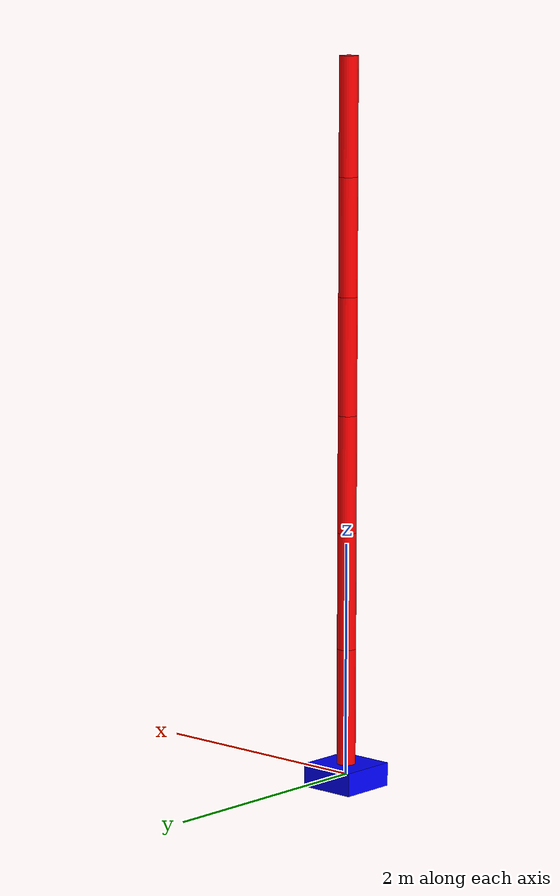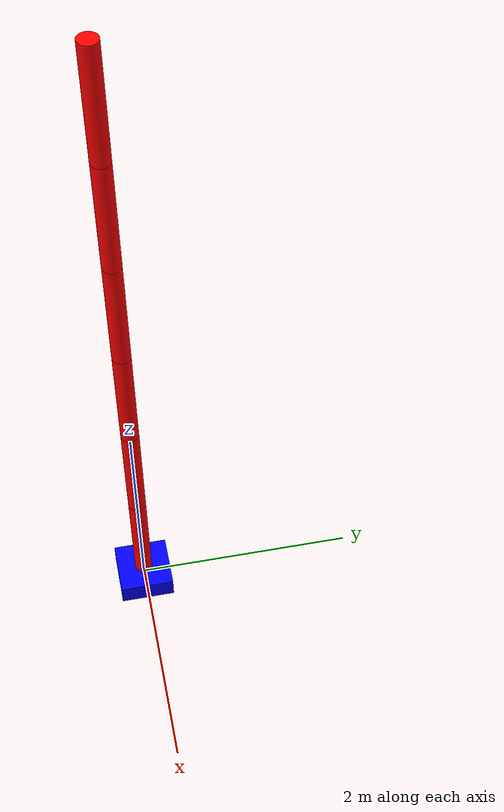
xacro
<?xml version="1.0"?>
<robot name="my_robot" xmlns:xacro="http://www.ros.org/wiki/xacro">
    <xacro:property name="base_size" value="0.5"/>
    <xacro:property name="base_height" value="0.2"/>
    <xacro:property name="arm_length" value="1.0"/>
    <xacro:property name="arm_radius" value="0.08"/>

<xacro:macro name="box_link" params="link_name size height">
    <link name="${link_name}">
        <visual>
            <geometry>
                <box size="${size} ${size} ${height}"/>
            </geometry>
            <material name="blue">
                <color rgba="0 0 1 1"/>
            </material>
        </visual>
    </link>
</xacro:macro>

<xacro:macro name="cylinder_link" params="link_name length radius">
    <link name="${link_name}">
        <visual>
            <origin xyz="0 0 ${length / 2}" rpy="0 0 0"/>
            <geometry>
                <cylinder radius="${radius}" length="${length}"/>
            </geometry>
            <material name="red">
                <color rgba="1 0 0 1"/>
            </material>
        </visual>

    </link>

</xacro:macro>

<xacro:box_link
    link_name="base_link"
    size="${base_size}"
    height="${base_height}"/>

<xacro:cylinder_link
    link_name="upper_link"
    length="${arm_length}"
    radius="${arm_radius}"/>

<xacro:cylinder_link
    link_name="forearm_link"
    length="${arm_length}"
    radius="${arm_radius}"/>

<xacro:cylinder_link
    link_name="wrist1_link"
    length="${arm_length}"
    radius="${arm_radius}"/>

<xacro:cylinder_link
    link_name="wrist2_link"
    length="${arm_length}"
    radius="${arm_radius}"/>

<xacro:cylinder_link
    link_name="wrist3_link"
    length="${arm_length}"
    radius="${arm_radius}"/>

<xacro:cylinder_link
    link_name="tool_link"
    length="${arm_length}"
    radius="${arm_radius}"/>

    <joint name="base_to_upper" type="revolute">
        <parent link="base_link"/>
        <child link="upper_link"/>
        <origin xyz="0 0 ${base_height / 2}" rpy="0 0 0"/>
        <axis xyz="0 0 1"/>
        <limit lower="-1.57" upper="1.57" effort="10" velocity="1.0"/>
    </joint>

    <joint name="upper_to_forearm" type="revolute">
        <parent link="upper_link"/>
        <child link="forearm_link"/>
        <origin xyz="0 0 ${arm_length}" rpy="0 0 0"/>
        <axis xyz="0 1 0"/>
        <limit lower="-1.57" upper="1.57" effort="10" velocity="1.0"/>
    </joint>

    <joint name="forearm_to_wrist1" type="revolute">
        <parent link="forearm_link"/>
        <child link="wrist1_link"/>
        <origin xyz="0 0 ${arm_length}" rpy="0 0 0"/>
        <axis xyz="1 0 0"/>
        <limit lower="-1.57" upper="1.57" effort="10" velocity="1.0"/>
    </joint>

    <joint name="wrist1_to_wrist2" type="revolute">
        <parent link="wrist1_link"/>
        <child link="wrist2_link"/>
        <origin xyz="0 0 ${arm_length}" rpy="0 0 0"/>
        <axis xyz="0 1 0"/>
        <limit lower="-1.57" upper="1.57" effort="10" velocity="1.0"/>
    </joint>

    <joint name="wrist2_to_wrist3" type="revolute">
        <parent link="wrist2_link"/>
        <child link="wrist3_link"/>
        <origin xyz="0 0 ${arm_length}" rpy="0 0 0"/>
        <axis xyz="1 0 0"/>
        <limit lower="-1.57" upper="1.57" effort="10" velocity="1.0"/>
    </joint>
    <joint name="wrist3_to_tool" type="revolute">
        <parent link="wrist3_link"/>
        <child link="tool_link"/>
        <origin xyz="0 0 ${arm_length}" rpy="0 0 0"/>
        <axis xyz="0 0 1"/>
        <limit lower="-3.14" upper="3.14" effort="5" velocity="1.0"/>
    </joint>
</robot>
